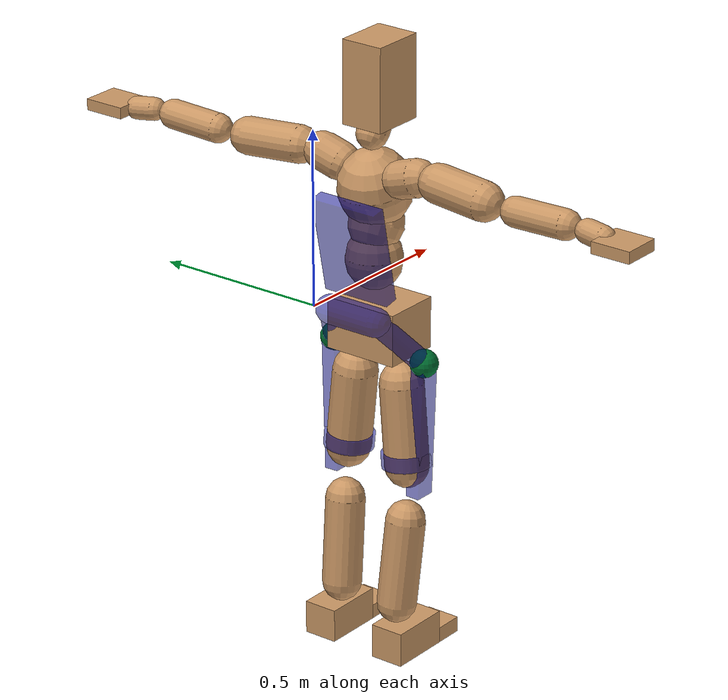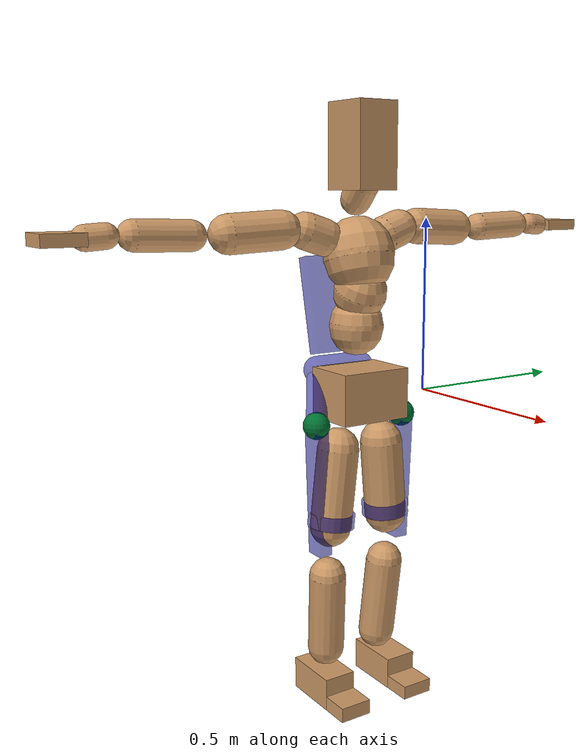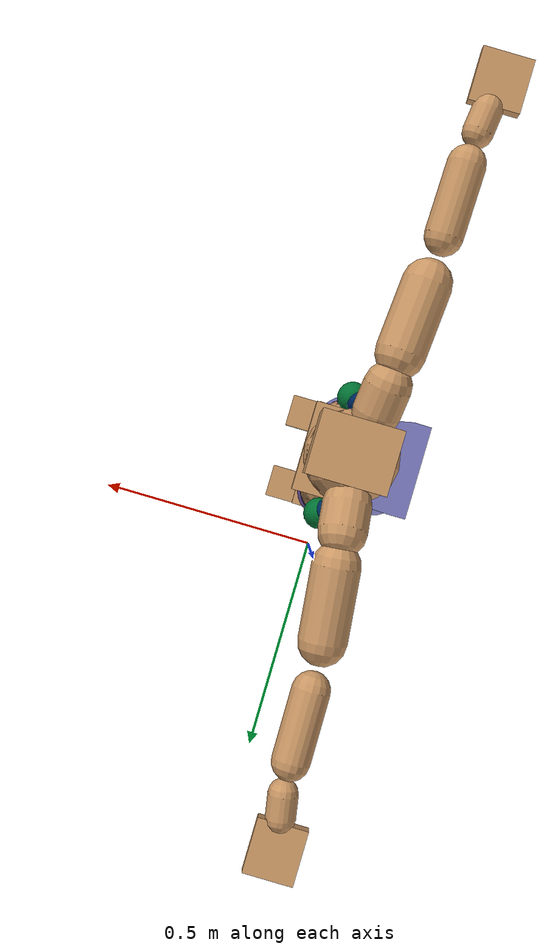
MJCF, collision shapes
<mujoco model="humanoid">
  <compiler coordinate="local" meshdir="../mesh/skeleton" />
  <asset>
    <texture type="skybox" builtin="gradient" rgb1=".4 .5 .6" rgb2="0 0 0" width="100" height="100" />
    <texture builtin="flat" height="1278" mark="cross" markrgb="1 1 1" name="texgeom" random="0.01" rgb1="0.8 0.6 0.4" rgb2="0.8 0.6 0.4" type="cube" width="127" />
    <texture builtin="checker" height="100" name="texplane" rgb1="0 0 0" rgb2="0.8 0.8 0.8" type="2d" width="100" />
    <material name="MatPlane" reflectance="0.5" shininess="1" specular="1" texrepeat="60 60" texture="texplane" />
    <material name="geom" texture="texgeom" texuniform="true" />
    <mesh name="exo_hip_frame" file="../exosuit_hs/hip_motor.stl" scale="0.001 0.001 0.001" />
    <mesh name="exo_thigh_l" file="../exosuit_hs/left_leg.stl" scale="0.001 0.001 0.001" />
    <mesh name="exo_thigh_r" file="../exosuit_hs/right_leg.stl" scale="0.001 0.001 0.001" />
  </asset>
  <worldbody>
    <light cutoff="100" diffuse="1 1 1" dir="-0 0 -1.3" directional="true" exponent="1" pos="0 0 1.3" specular=".1 .1 .1" />
    <body name="Pelvis" pos="-0.0018 -0.2233 0.0282">
      <geom type="box" pos="-0.0055 -0.0000 -0.0121" size="0.083 0.1069 0.0722" quat="1.0000 0.0000 0.0000 0.0000" density="1000" conaffinity="1" condim="3" contype="7" margin="0.001" rgba="0.8 0.6 .4 1" />
      <body name="L_Hip" pos="-0.0068 0.0695 -0.0914">
        <joint name="L_Hip_x" type="hinge" pos="0 0 0" axis="1 0 0" stiffness="800" damping="80" armature="0.02" range="-180.0000 180.0000" limited="true" />
        <joint name="L_Hip_y" type="hinge" pos="0 0 0" axis="0 1 0" stiffness="800" damping="80" armature="0.02" range="-180.0000 180.0000" limited="true" />
        <joint name="L_Hip_z" type="hinge" pos="0 0 0" axis="0 0 1" stiffness="800" damping="80" armature="0.02" range="-180.0000 180.0000" limited="true" />
        <geom type="capsule" contype="1" conaffinity="1" density="2040.816327" fromto="-0.0009 0.0069 -0.0750 -0.0036 0.0274 -0.3002" size="0.0615" condim="3" margin="0.001" rgba="0.8 0.6 .4 1" />
        <body name="L_Knee" pos="-0.0045 0.0343 -0.3752">
          <joint name="L_Knee_x" type="hinge" pos="0 0 0" axis="1 0 0" stiffness="800" damping="80" armature="0.02" range="-180.0000 180.0000" limited="true" />
          <joint name="L_Knee_y" type="hinge" pos="0 0 0" axis="0 1 0" stiffness="800" damping="80" armature="0.02" range="-180.0000 180.0000" limited="true" />
          <joint name="L_Knee_z" type="hinge" pos="0 0 0" axis="0 0 1" stiffness="800" damping="80" armature="0.02" range="-180.0000 180.0000" limited="true" />
          <geom type="capsule" contype="1" conaffinity="1" density="1234.567901" fromto="-0.0087 -0.0027 -0.0796 -0.0350 -0.0109 -0.3184" size="0.0541" condim="3" margin="0.001" rgba="0.8 0.6 .4 1" />
          <body name="L_Ankle" pos="-0.0437 -0.0136 -0.398">
            <joint name="L_Ankle_x" type="hinge" pos="0 0 0" axis="1 0 0" stiffness="800" damping="80" armature="0.02" range="-180.0000 180.0000" limited="true" />
            <joint name="L_Ankle_y" type="hinge" pos="0 0 0" axis="0 1 0" stiffness="800" damping="80" armature="0.02" range="-180.0000 180.0000" limited="true" />
            <joint name="L_Ankle_z" type="hinge" pos="0 0 0" axis="0 0 1" stiffness="800" damping="80" armature="0.02" range="-180.0000 180.0000" limited="true" />
            <geom type="box" pos="0.0242 0.0233 -0.0239" size="0.085 0.0483 0.0464" quat="1.0000 0.0000 0.0000 0.0000" density="1000" conaffinity="1" condim="3" contype="7" margin="0.001" rgba="0.8 0.6 .4 1" />
            <body name="L_Toe" pos="0.1193 0.0264 -0.0558">
              <joint name="L_Toe_x" type="hinge" pos="0 0 0" axis="1 0 0" stiffness="500" damping="50" armature="0.02" range="-5.0000 5.0000" limited="true" />
              <joint name="L_Toe_y" type="hinge" pos="0 0 0" axis="0 1 0" stiffness="500" damping="50" armature="0.02" range="-5.0000 5.0000" limited="true" />
              <joint name="L_Toe_z" type="hinge" pos="0 0 0" axis="0 0 1" stiffness="500" damping="50" armature="0.02" range="-5.0000 5.0000" limited="true" />
              <geom type="box" pos="0.0248 -0.0030 0.0055" size="0.0496 0.0478 0.02" quat="1.0000 0.0000 0.0000 0.0000" density="1000" conaffinity="1" condim="3" contype="7" margin="0.001" rgba="0.8 0.6 .4 1" />
            </body>
          </body>
        </body>
        <geom name="left_hip_motor" type="sphere" size="0.0385" pos="0.0013 0.0785 0.0004" mass="0.53" contype="0" conaffinity="0" rgba="0.0 0.45 0.2 1" />
        <geom name="left_thigh_box" type="box" size="0.030 0.02 0.1883" pos="-0.0004 0.0717 -0.1878" quat="0.99983 -0.01806 0.00438 0" mass="0.1977" contype="0" conaffinity="0" rgba="0.0 0.0 0.55 0.55" />
        <geom name="left_hip_ring" type="cylinder" fromto="-0.0031 0.0238 -0.2603 -0.0036 0.0274 -0.3001" size="0.069" mass="0.0923" contype="0" conaffinity="0" rgba="0.0 0.0 0.55 0.55" />
        <geom name="mesh_exo_thigh_l" type="mesh" mesh="exo_thigh_l" quat="0.6905832 0.1660015 0.1640944 0.6845519" pos="-0.306926 0.0193557 -0.097544" contype="0" conaffinity="0" mass="0" rgba="0.35 0.38 0.42 1" />
      </body>
      <body name="R_Hip" pos="-0.0043 -0.0677 -0.0905">
        <joint name="R_Hip_x" type="hinge" pos="0 0 0" axis="1 0 0" stiffness="800" damping="80" armature="0.02" range="-180.0000 180.0000" limited="true" />
        <joint name="R_Hip_y" type="hinge" pos="0 0 0" axis="0 1 0" stiffness="800" damping="80" armature="0.02" range="-180.0000 180.0000" limited="true" />
        <joint name="R_Hip_z" type="hinge" pos="0 0 0" axis="0 0 1" stiffness="800" damping="80" armature="0.02" range="-180.0000 180.0000" limited="true" />
        <geom type="capsule" contype="1" conaffinity="1" density="2040.816327" fromto="-0.0018 -0.0077 -0.0765 -0.0071 -0.0306 -0.3061" size="0.0606" condim="3" margin="0.001" rgba="0.8 0.6 .4 1" />
        <body name="R_Knee" pos="-0.0089 -0.0383 -0.3826">
          <joint name="R_Knee_x" type="hinge" pos="0 0 0" axis="1 0 0" stiffness="800" damping="80" armature="0.02" range="-180.0000 180.0000" limited="true" />
          <joint name="R_Knee_y" type="hinge" pos="0 0 0" axis="0 1 0" stiffness="800" damping="80" armature="0.02" range="-180.0000 180.0000" limited="true" />
          <joint name="R_Knee_z" type="hinge" pos="0 0 0" axis="0 0 1" stiffness="800" damping="80" armature="0.02" range="-180.0000 180.0000" limited="true" />
          <geom type="capsule" contype="1" conaffinity="1" density="1234.567901" fromto="-0.0085 0.0032 -0.0797 -0.0338 0.0126 -0.3187" size="0.0541" condim="3" margin="0.001" rgba="0.8 0.6 .4 1" />
          <body name="R_Ankle" pos="-0.0423 0.0158 -0.3984">
            <joint name="R_Ankle_x" type="hinge" pos="0 0 0" axis="1 0 0" stiffness="800" damping="80" armature="0.02" range="-180.0000 180.0000" limited="true" />
            <joint name="R_Ankle_y" type="hinge" pos="0 0 0" axis="0 1 0" stiffness="800" damping="80" armature="0.02" range="-180.0000 180.0000" limited="true" />
            <joint name="R_Ankle_z" type="hinge" pos="0 0 0" axis="0 0 1" stiffness="800" damping="80" armature="0.02" range="-180.0000 180.0000" limited="true" />
            <geom type="box" pos="0.0256 -0.0212 -0.0174" size="0.0865 0.0483 0.0478" quat="1.0000 0.0000 0.0000 0.0000" density="1000" conaffinity="1" condim="3" contype="7" margin="0.001" rgba="0.8 0.6 .4 1" />
            <body name="R_Toe" pos="0.1233 -0.0254 -0.0481">
              <joint name="R_Toe_x" type="hinge" pos="0 0 0" axis="1 0 0" stiffness="500" damping="50" armature="0.02" range="-5.0000 5.0000" limited="true" />
              <joint name="R_Toe_y" type="hinge" pos="0 0 0" axis="0 1 0" stiffness="500" damping="50" armature="0.02" range="-5.0000 5.0000" limited="true" />
              <joint name="R_Toe_z" type="hinge" pos="0 0 0" axis="0 0 1" stiffness="500" damping="50" armature="0.02" range="-5.0000 5.0000" limited="true" />
              <geom type="box" pos="0.0227 0.0042 0.0045" size="0.0493 0.0479 0.0216" quat="1.0000 0.0000 0.0000 0.0000" density="1000" conaffinity="1" condim="3" contype="7" margin="0.001" rgba="0.8 0.6 .4 1" />
            </body>
          </body>
        </body>
        <geom name="right_hip_motor" type="sphere" size="0.0385" pos="-0.0012 -0.0803 -0.0005" mass="0.53" contype="0" conaffinity="0" rgba="0.0 0.45 0.2 1" />
        <geom name="right_thigh_box" type="box" size="0.030 0.02 0.1909" pos="-0.0026 -0.0740 -0.1913" quat="0.99986 0.01638 0.00367 0" mass="0.1977" contype="0" conaffinity="0" rgba="0.0 0.0 0.55 0.55" />
        <geom name="right_hip_ring" type="cylinder" fromto="-0.0062 -0.0266 -0.2662 -0.0071 -0.0306 -0.3060" size="0.0681" mass="0.0923" contype="0" conaffinity="0" rgba="0.0 0.0 0.55 0.55" />
        <geom name="mesh_exo_thigh_r" type="mesh" mesh="exo_thigh_r" quat="0.6905832 0.1660015 0.1640944 0.6845519" pos="-0.309426 0.156556 -0.098444" contype="0" conaffinity="0" mass="0" rgba="0.35 0.38 0.42 1" />
      </body>
      <body name="Torso" pos="-0.0267 -0.0025 0.109">
        <joint name="Torso_x" type="hinge" pos="0 0 0" axis="1 0 0" stiffness="1000" damping="100" armature="0.02" range="-180.0000 180.0000" limited="true" />
        <joint name="Torso_y" type="hinge" pos="0 0 0" axis="0 1 0" stiffness="1000" damping="100" armature="0.02" range="-180.0000 180.0000" limited="true" />
        <joint name="Torso_z" type="hinge" pos="0 0 0" axis="0 0 1" stiffness="1000" damping="100" armature="0.02" range="-180.0000 180.0000" limited="true" />
        <geom type="capsule" contype="1" conaffinity="1" density="2040.816327" fromto="0.0005 0.0025 0.0608 0.0006 0.0030 0.0743" size="0.0769" condim="3" margin="0.001" rgba="0.8 0.6 .4 1" />
        <body name="Spine" pos="0.0011 0.0055 0.1352">
          <joint name="Spine_x" type="hinge" pos="0 0 0" axis="1 0 0" stiffness="1000" damping="100" armature="0.02" range="-180.0000 180.0000" limited="true" />
          <joint name="Spine_y" type="hinge" pos="0 0 0" axis="0 1 0" stiffness="1000" damping="100" armature="0.02" range="-180.0000 180.0000" limited="true" />
          <joint name="Spine_z" type="hinge" pos="0 0 0" axis="0 0 1" stiffness="1000" damping="100" armature="0.02" range="-180.0000 180.0000" limited="true" />
          <geom type="capsule" contype="1" conaffinity="1" density="2040.816327" fromto="0.0114 0.0007 0.0238 0.0140 0.0008 0.0291" size="0.0755" condim="3" margin="0.001" rgba="0.8 0.6 .4 1" />
          <body name="Chest" pos="0.0254 0.0015 0.0529">
            <joint name="Chest_x" type="hinge" pos="0 0 0" axis="1 0 0" stiffness="1000" damping="100" armature="0.02" range="-180.0000 180.0000" limited="true" />
            <joint name="Chest_y" type="hinge" pos="0 0 0" axis="0 1 0" stiffness="1000" damping="100" armature="0.02" range="-180.0000 180.0000" limited="true" />
            <joint name="Chest_z" type="hinge" pos="0 0 0" axis="0 0 1" stiffness="1000" damping="100" armature="0.02" range="-180.0000 180.0000" limited="true" />
            <geom type="capsule" contype="1" conaffinity="1" density="2040.816327" fromto="-0.0173 -0.0009 0.0682 -0.0212 -0.0010 0.0833" size="0.1002" condim="3" margin="0.001" rgba="0.8 0.6 .4 1" />
            <body name="Neck" pos="-0.0429 -0.0028 0.2139">
              <joint name="Neck_x" type="hinge" pos="0 0 0" axis="1 0 0" stiffness="500" damping="50" armature="0.02" range="-180.0000 180.0000" limited="true" />
              <joint name="Neck_y" type="hinge" pos="0 0 0" axis="0 1 0" stiffness="500" damping="50" armature="0.02" range="-180.0000 180.0000" limited="true" />
              <joint name="Neck_z" type="hinge" pos="0 0 0" axis="0 0 1" stiffness="500" damping="50" armature="0.02" range="-180.0000 180.0000" limited="true" />
              <geom type="capsule" contype="1" conaffinity="1" density="1000" fromto="0.0103 0.0010 0.0130 0.0411 0.0041 0.0520" size="0.0436" condim="3" margin="0.001" rgba="0.8 0.6 .4 1" />
              <body name="Head" pos="0.0513 0.0052 0.065">
                <joint name="Head_x" type="hinge" pos="0 0 0" axis="1 0 0" stiffness="500" damping="50" armature="0.02" range="-180.0000 180.0000" limited="true" />
                <joint name="Head_y" type="hinge" pos="0 0 0" axis="0 1 0" stiffness="500" damping="50" armature="0.02" range="-180.0000 180.0000" limited="true" />
                <joint name="Head_z" type="hinge" pos="0 0 0" axis="0 0 1" stiffness="500" damping="50" armature="0.02" range="-180.0000 180.0000" limited="true" />
                <geom type="box" pos="-0.0116 -0.0042 0.0876" size="0.076 0.0606 0.1154" quat="1.0000 0.0000 0.0000 0.0000" density="1000" conaffinity="1" condim="3" contype="7" margin="0.001" rgba="0.8 0.6 .4 1" />
              </body>
            </body>
            <body name="L_Thorax" pos="-0.0341 0.0788 0.1217">
              <joint name="L_Thorax_x" type="hinge" pos="0 0 0" axis="1 0 0" stiffness="500" damping="50" armature="0.02" range="-180.0000 180.0000" limited="true" />
              <joint name="L_Thorax_y" type="hinge" pos="0 0 0" axis="0 1 0" stiffness="500" damping="50" armature="0.02" range="-180.0000 180.0000" limited="true" />
              <joint name="L_Thorax_z" type="hinge" pos="0 0 0" axis="0 0 1" stiffness="500" damping="50" armature="0.02" range="-180.0000 180.0000" limited="true" />
              <geom type="capsule" contype="1" conaffinity="1" density="1000" fromto="-0.0018 0.0182 0.0061 -0.0071 0.0728 0.0244" size="0.0521" condim="3" margin="0.001" rgba="0.8 0.6 .4 1" />
              <body name="L_Shoulder" pos="-0.0089 0.091 0.0305">
                <joint name="L_Shoulder_x" type="hinge" pos="0 0 0" axis="1 0 0" stiffness="500" damping="50" armature="0.02" range="-180.0000 180.0000" limited="true" />
                <joint name="L_Shoulder_y" type="hinge" pos="0 0 0" axis="0 1 0" stiffness="500" damping="50" armature="0.02" range="-180.0000 180.0000" limited="true" />
                <joint name="L_Shoulder_z" type="hinge" pos="0 0 0" axis="0 0 1" stiffness="500" damping="50" armature="0.02" range="-180.0000 180.0000" limited="true" />
                <geom type="capsule" contype="1" conaffinity="1" density="1000" fromto="-0.0055 0.0519 -0.0026 -0.0220 0.2077 -0.0102" size="0.0517" condim="3" margin="0.001" rgba="0.8 0.6 .4 1" />
                <body name="L_Elbow" pos="-0.0275 0.2596 -0.0128">
                  <joint name="L_Elbow_x" type="hinge" pos="0 0 0" axis="1 0 0" stiffness="500" damping="50" armature="0.02" range="-180.0000 180.0000" limited="true" />
                  <joint name="L_Elbow_y" type="hinge" pos="0 0 0" axis="0 1 0" stiffness="500" damping="50" armature="0.02" range="-180.0000 180.0000" limited="true" />
                  <joint name="L_Elbow_z" type="hinge" pos="0 0 0" axis="0 0 1" stiffness="500" damping="50" armature="0.02" range="-180.0000 180.0000" limited="true" />
                  <geom type="capsule" contype="1" conaffinity="1" density="1000" fromto="-0.0002 0.0498 0.0018 -0.0009 0.1994 0.0072" size="0.0405" condim="3" margin="0.001" rgba="0.8 0.6 .4 1" />
                  <body name="L_Wrist" pos="-0.0012 0.2492 0.009">
                    <joint name="L_Wrist_x" type="hinge" pos="0 0 0" axis="1 0 0" stiffness="300" damping="30" armature="0.02" range="-180.0000 180.0000" limited="true" />
                    <joint name="L_Wrist_y" type="hinge" pos="0 0 0" axis="0 1 0" stiffness="300" damping="30" armature="0.02" range="-180.0000 180.0000" limited="true" />
                    <joint name="L_Wrist_z" type="hinge" pos="0 0 0" axis="0 0 1" stiffness="300" damping="30" armature="0.02" range="-180.0000 180.0000" limited="true" />
                    <geom type="capsule" contype="1" conaffinity="1" density="1000" fromto="-0.0030 0.0168 -0.0016 -0.0120 0.0672 -0.0065" size="0.0318" condim="3" margin="0.001" rgba="0.8 0.6 .4 1" />
                    <body name="L_Hand" pos="-0.0149 0.084 -0.0082">
                      <joint name="L_Hand_x" type="hinge" pos="0 0 0" axis="1 0 0" stiffness="300" damping="30" armature="0.02" range="-5.0000 5.0000" limited="true" />
                      <joint name="L_Hand_y" type="hinge" pos="0 0 0" axis="0 1 0" stiffness="300" damping="30" armature="0.02" range="-5.0000 5.0000" limited="true" />
                      <joint name="L_Hand_z" type="hinge" pos="0 0 0" axis="0 0 1" stiffness="300" damping="30" armature="0.02" range="-5.0000 5.0000" limited="true" />
                      <geom type="box" pos="-0.0058 0.0493 0.0010" size="0.0538 0.0585 0.0158" quat="1.0000 0.0000 0.0000 0.0000" density="1000" conaffinity="1" condim="3" contype="7" margin="0.001" rgba="0.8 0.6 .4 1" />
                    </body>
                  </body>
                </body>
              </body>
            </body>
            <body name="R_Thorax" pos="-0.0386 -0.0818 0.1188">
              <joint name="R_Thorax_x" type="hinge" pos="0 0 0" axis="1 0 0" stiffness="500" damping="50" armature="0.02" range="-180.0000 180.0000" limited="true" />
              <joint name="R_Thorax_y" type="hinge" pos="0 0 0" axis="0 1 0" stiffness="500" damping="50" armature="0.02" range="-180.0000 180.0000" limited="true" />
              <joint name="R_Thorax_z" type="hinge" pos="0 0 0" axis="0 0 1" stiffness="500" damping="50" armature="0.02" range="-180.0000 180.0000" limited="true" />
              <geom type="capsule" contype="1" conaffinity="1" density="1000" fromto="-0.0018 -0.0192 0.0065 -0.0073 -0.0768 0.0260" size="0.0511" condim="3" margin="0.001" rgba="0.8 0.6 .4 1" />
              <body name="R_Shoulder" pos="-0.0091 -0.096 0.0326">
                <joint name="R_Shoulder_x" type="hinge" pos="0 0 0" axis="1 0 0" stiffness="500" damping="50" armature="0.02" range="-180.0000 180.0000" limited="true" />
                <joint name="R_Shoulder_y" type="hinge" pos="0 0 0" axis="0 1 0" stiffness="500" damping="50" armature="0.02" range="-180.0000 180.0000" limited="true" />
                <joint name="R_Shoulder_z" type="hinge" pos="0 0 0" axis="0 0 1" stiffness="500" damping="50" armature="0.02" range="-180.0000 180.0000" limited="true" />
                <geom type="capsule" contype="1" conaffinity="1" density="1000" fromto="-0.0043 -0.0507 -0.0027 -0.0171 -0.2030 -0.0107" size="0.0531" condim="3" margin="0.001" rgba="0.8 0.6 .4 1" />
                <body name="R_Elbow" pos="-0.0214 -0.2537 -0.0133">
                  <joint name="R_Elbow_x" type="hinge" pos="0 0 0" axis="1 0 0" stiffness="500" damping="50" armature="0.02" range="-180.0000 180.0000" limited="true" />
                  <joint name="R_Elbow_y" type="hinge" pos="0 0 0" axis="0 1 0" stiffness="500" damping="50" armature="0.02" range="-180.0000 180.0000" limited="true" />
                  <joint name="R_Elbow_z" type="hinge" pos="0 0 0" axis="0 0 1" stiffness="500" damping="50" armature="0.02" range="-180.0000 180.0000" limited="true" />
                  <geom type="capsule" contype="1" conaffinity="1" density="1000" fromto="-0.0011 -0.0511 0.0016 -0.0044 -0.2042 0.0062" size="0.0408" condim="3" margin="0.001" rgba="0.8 0.6 .4 1" />
                  <body name="R_Wrist" pos="-0.0056 -0.2553 0.0078">
                    <joint name="R_Wrist_x" type="hinge" pos="0 0 0" axis="1 0 0" stiffness="300" damping="30" armature="0.02" range="-180.0000 180.0000" limited="true" />
                    <joint name="R_Wrist_y" type="hinge" pos="0 0 0" axis="0 1 0" stiffness="300" damping="30" armature="0.02" range="-180.0000 180.0000" limited="true" />
                    <joint name="R_Wrist_z" type="hinge" pos="0 0 0" axis="0 0 1" stiffness="300" damping="30" armature="0.02" range="-180.0000 180.0000" limited="true" />
                    <geom type="capsule" contype="1" conaffinity="1" density="1000" fromto="-0.0021 -0.0169 -0.0012 -0.0083 -0.0677 -0.0049" size="0.0326" condim="3" margin="0.001" rgba="0.8 0.6 .4 1" />
                    <body name="R_Hand" pos="-0.0103 -0.0846 -0.0061">
                      <joint name="R_Hand_x" type="hinge" pos="0 0 0" axis="1 0 0" stiffness="300" damping="30" armature="0.02" range="-5.0000 5.0000" limited="true" />
                      <joint name="R_Hand_y" type="hinge" pos="0 0 0" axis="0 1 0" stiffness="300" damping="30" armature="0.02" range="-5.0000 5.0000" limited="true" />
                      <joint name="R_Hand_z" type="hinge" pos="0 0 0" axis="0 0 1" stiffness="300" damping="30" armature="0.02" range="-5.0000 5.0000" limited="true" />
                      <geom type="box" pos="-0.0079 -0.0462 -0.0009" size="0.0546 0.0569 0.0164" quat="1.0000 0.0000 0.0000 0.0000" density="1000" conaffinity="1" condim="3" contype="7" margin="0.001" rgba="0.8 0.6 .4 1" />
                    </body>
                  </body>
                </body>
              </body>
            </body>
          </body>
        </body>
        <geom name="exo_main_col" type="box" size="0.02 0.1 0.1374" pos="-0.090 0 0.1213" quat="0.994521895 0.0 -0.104528463 0.0" mass="1.37" contype="0" conaffinity="0" rgba="0.0 0.0 0.55 0.55" />
      </body>
      <joint type="free" name="Pelvis" limited="false" actuatorfrclimited="false" />
      <geom name="waist_hip_bar" type="capsule" fromto="-0.1166 -0.074 0.0436 -0.1166 0.074 0.0436" size="0.040" mass="0.9389" contype="0" conaffinity="0" rgba="0.0 0.0 0.55 0.55" />
      <geom name="waist_hip_arm_l" type="capsule" fromto="-0.0055 0.148 -0.091 -0.1166 0.074 0.0436" size="0.030" mass="0.3756" contype="0" conaffinity="0" rgba="0.0 0.0 0.55 0.55" />
      <geom name="waist_hip_arm_r" type="capsule" fromto="-0.0055 -0.148 -0.091 -0.1166 -0.074 0.0436" size="0.030" mass="0.3756" contype="0" conaffinity="0" rgba="0.0 0.0 0.55 0.55" />
      <geom name="mesh_exo_hip_frame" type="mesh" mesh="exo_hip_frame" quat="0.6905832 0.1660015 0.1640944 0.6845519" pos="-0.313726 0.0888557 -0.188944" contype="0" conaffinity="0" mass="0" rgba="0.35 0.38 0.42 1" />
    </body>
  </worldbody>
  <actuator>
    <motor name="L_Hip_x" joint="L_Hip_x" gear="500" />
    <motor name="L_Hip_y" joint="L_Hip_y" gear="500" />
    <motor name="L_Hip_z" joint="L_Hip_z" gear="500" />
    <motor name="L_Knee_x" joint="L_Knee_x" gear="500" />
    <motor name="L_Knee_y" joint="L_Knee_y" gear="500" />
    <motor name="L_Knee_z" joint="L_Knee_z" gear="500" />
    <motor name="L_Ankle_x" joint="L_Ankle_x" gear="500" />
    <motor name="L_Ankle_y" joint="L_Ankle_y" gear="500" />
    <motor name="L_Ankle_z" joint="L_Ankle_z" gear="500" />
    <motor name="L_Toe_x" joint="L_Toe_x" gear="500" />
    <motor name="L_Toe_y" joint="L_Toe_y" gear="500" />
    <motor name="L_Toe_z" joint="L_Toe_z" gear="500" />
    <motor name="R_Hip_x" joint="R_Hip_x" gear="500" />
    <motor name="R_Hip_y" joint="R_Hip_y" gear="500" />
    <motor name="R_Hip_z" joint="R_Hip_z" gear="500" />
    <motor name="R_Knee_x" joint="R_Knee_x" gear="500" />
    <motor name="R_Knee_y" joint="R_Knee_y" gear="500" />
    <motor name="R_Knee_z" joint="R_Knee_z" gear="500" />
    <motor name="R_Ankle_x" joint="R_Ankle_x" gear="500" />
    <motor name="R_Ankle_y" joint="R_Ankle_y" gear="500" />
    <motor name="R_Ankle_z" joint="R_Ankle_z" gear="500" />
    <motor name="R_Toe_x" joint="R_Toe_x" gear="500" />
    <motor name="R_Toe_y" joint="R_Toe_y" gear="500" />
    <motor name="R_Toe_z" joint="R_Toe_z" gear="500" />
    <motor name="Torso_x" joint="Torso_x" gear="500" />
    <motor name="Torso_y" joint="Torso_y" gear="500" />
    <motor name="Torso_z" joint="Torso_z" gear="500" />
    <motor name="Spine_x" joint="Spine_x" gear="500" />
    <motor name="Spine_y" joint="Spine_y" gear="500" />
    <motor name="Spine_z" joint="Spine_z" gear="500" />
    <motor name="Chest_x" joint="Chest_x" gear="500" />
    <motor name="Chest_y" joint="Chest_y" gear="500" />
    <motor name="Chest_z" joint="Chest_z" gear="500" />
    <motor name="Neck_x" joint="Neck_x" gear="500" />
    <motor name="Neck_y" joint="Neck_y" gear="500" />
    <motor name="Neck_z" joint="Neck_z" gear="500" />
    <motor name="Head_x" joint="Head_x" gear="500" />
    <motor name="Head_y" joint="Head_y" gear="500" />
    <motor name="Head_z" joint="Head_z" gear="500" />
    <motor name="L_Thorax_x" joint="L_Thorax_x" gear="500" />
    <motor name="L_Thorax_y" joint="L_Thorax_y" gear="500" />
    <motor name="L_Thorax_z" joint="L_Thorax_z" gear="500" />
    <motor name="L_Shoulder_x" joint="L_Shoulder_x" gear="500" />
    <motor name="L_Shoulder_y" joint="L_Shoulder_y" gear="500" />
    <motor name="L_Shoulder_z" joint="L_Shoulder_z" gear="500" />
    <motor name="L_Elbow_x" joint="L_Elbow_x" gear="500" />
    <motor name="L_Elbow_y" joint="L_Elbow_y" gear="500" />
    <motor name="L_Elbow_z" joint="L_Elbow_z" gear="500" />
    <motor name="L_Wrist_x" joint="L_Wrist_x" gear="500" />
    <motor name="L_Wrist_y" joint="L_Wrist_y" gear="500" />
    <motor name="L_Wrist_z" joint="L_Wrist_z" gear="500" />
    <motor name="L_Hand_x" joint="L_Hand_x" gear="500" />
    <motor name="L_Hand_y" joint="L_Hand_y" gear="500" />
    <motor name="L_Hand_z" joint="L_Hand_z" gear="500" />
    <motor name="R_Thorax_x" joint="R_Thorax_x" gear="500" />
    <motor name="R_Thorax_y" joint="R_Thorax_y" gear="500" />
    <motor name="R_Thorax_z" joint="R_Thorax_z" gear="500" />
    <motor name="R_Shoulder_x" joint="R_Shoulder_x" gear="500" />
    <motor name="R_Shoulder_y" joint="R_Shoulder_y" gear="500" />
    <motor name="R_Shoulder_z" joint="R_Shoulder_z" gear="500" />
    <motor name="R_Elbow_x" joint="R_Elbow_x" gear="500" />
    <motor name="R_Elbow_y" joint="R_Elbow_y" gear="500" />
    <motor name="R_Elbow_z" joint="R_Elbow_z" gear="500" />
    <motor name="R_Wrist_x" joint="R_Wrist_x" gear="500" />
    <motor name="R_Wrist_y" joint="R_Wrist_y" gear="500" />
    <motor name="R_Wrist_z" joint="R_Wrist_z" gear="500" />
    <motor name="R_Hand_x" joint="R_Hand_x" gear="500" />
    <motor name="R_Hand_y" joint="R_Hand_y" gear="500" />
    <motor name="R_Hand_z" joint="R_Hand_z" gear="500" />
    <motor name="exo_hip_l" joint="L_Hip_y" gear="23.7" ctrllimited="true" ctrlrange="-1 1" />
    <motor name="exo_hip_r" joint="R_Hip_y" gear="23.7" ctrllimited="true" ctrlrange="-1 1" />
  </actuator>
  <contact>
    <exclude body1="Torso" body2="Chest" />
    <exclude body1="Head" body2="Chest" />
    <exclude body1="R_Knee" body2="R_Toe" />
    <exclude body1="R_Knee" body2="L_Ankle" />
    <exclude body1="R_Knee" body2="L_Toe" />
    <exclude body1="L_Knee" body2="L_Toe" />
    <exclude body1="L_Knee" body2="R_Ankle" />
    <exclude body1="L_Knee" body2="R_Toe" />
    <exclude body1="L_Shoulder" body2="Chest" />
    <exclude body1="R_Shoulder" body2="Chest" />
  </contact>
  <sensor />
  <size njmax="700" nconmax="700" />
</mujoco>
